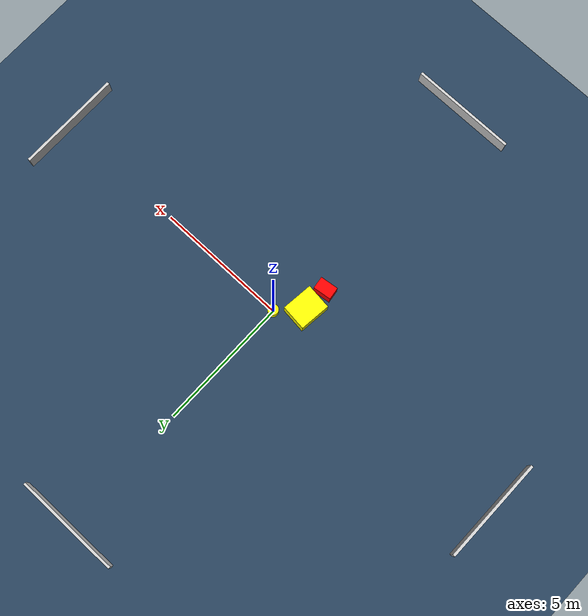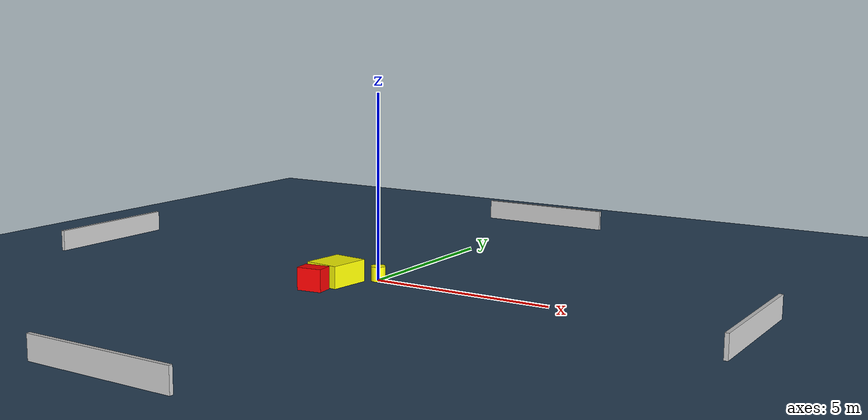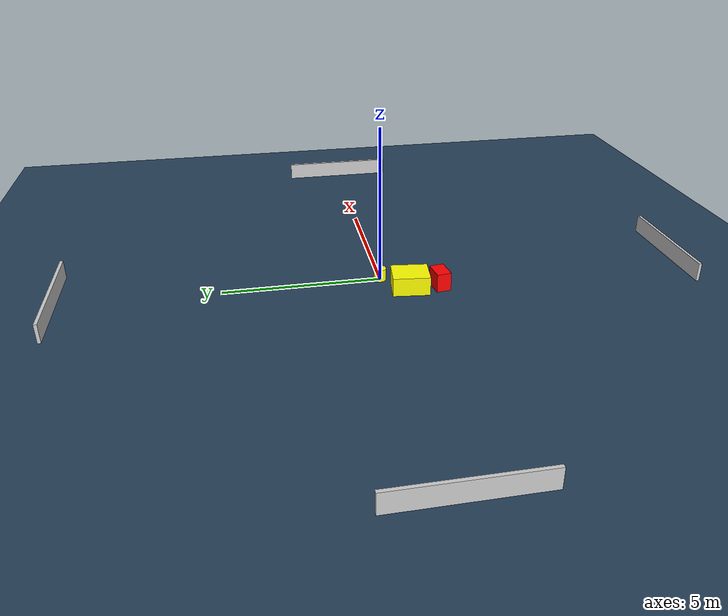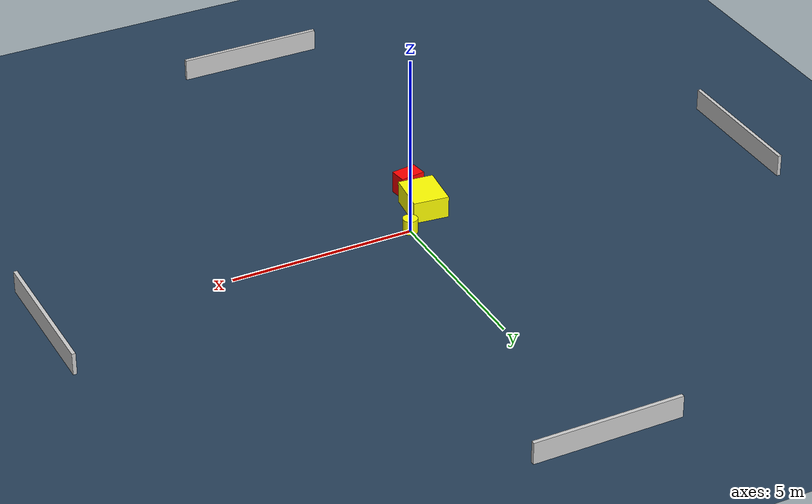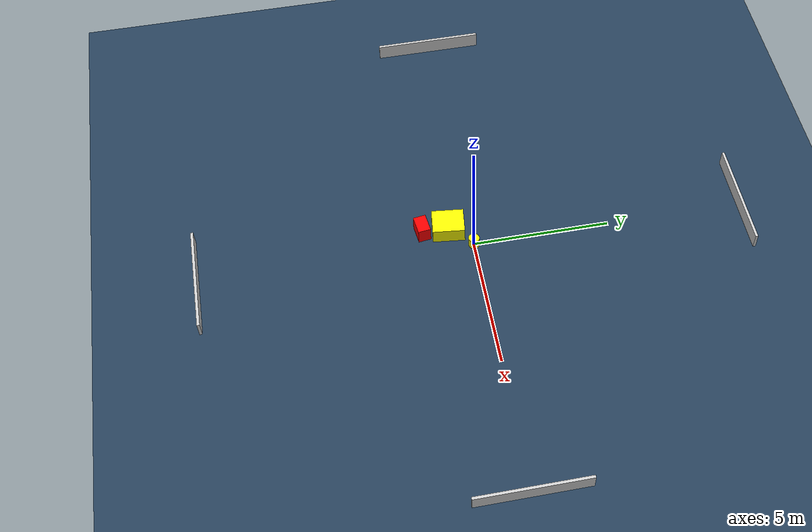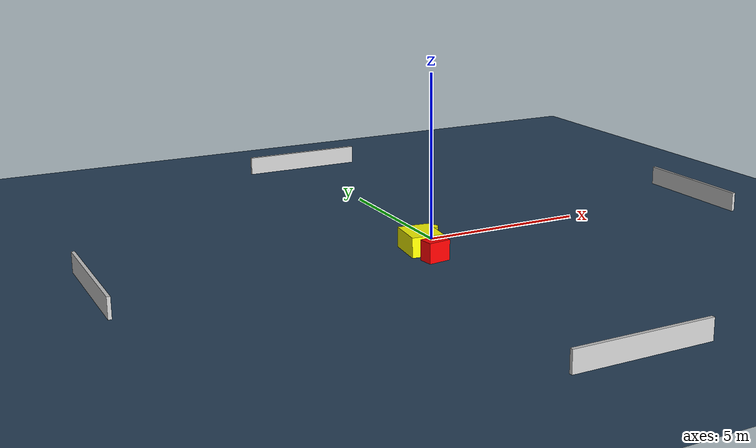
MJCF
<?xml version="1.0" ?>
<mujoco model="generated_environment">
  <option timestep="0.01" integrator="RK4" cone="elliptic"/>
  <default>
    <geom density="1"/>
  </default>
  <asset>
    <texture builtin="gradient" height="3072" name="skybox" rgb1="0.3 0.5 0.7" rgb2="0 0 0" type="skybox" width="512"/>
    <texture builtin="checker" height="300" name="groundplane" rgb1="0.2 0.3 0.4" rgb2="0.1 0.2 0.3" type="2d" width="300"/>
    <material name="groundplane" reflectance="0.2" texrepeat="5 5" texture="groundplane"/>
  </asset>
  <worldbody>
    <light dir="0 0 -1" directional="true" pos="0 0 1.5"/>
    <geom condim="3" friction="0.5 0.005 0.001" material="groundplane" name="floor" pos="0 0 0" size="0 0 0.05" type="plane"/>
    <body name="walls">
      <geom name="wall_1" condim="4" pos="-10.0 0.0 0.3" rgba="0.800000011920929 0.800000011920929 0.800000011920929 1.0" size="0.05 2.0 0.3" type="box"/>
      <geom name="wall_2" condim="4" pos="10.0 0.0 0.3" rgba="0.800000011920929 0.800000011920929 0.800000011920929 1.0" size="0.05 2.0 0.3" type="box"/>
      <geom name="wall_3" condim="4" pos="0.0 -10.0 0.3" rgba="0.800000011920929 0.800000011920929 0.800000011920929 1.0" size="2.0 0.05 0.3" type="box"/>
      <geom name="wall_4" condim="4" pos="0.0 10.0 0.3" rgba="0.800000011920929 0.800000011920929 0.800000011920929 1.0" size="2.0 0.05 0.3" type="box"/>
    </body>
    <body name="robot">
      <joint name="joint_x" type="slide" pos="0 0 0" axis="1 0 0"/>
      <joint name="joint_y" type="slide" pos="0 0 0" axis="0 1 0"/>
      <geom name="robot" type="cylinder" pos="0.0 0.0 0.2" size="0.2 0.2 0.0" mass="5.0" friction="1.0 0.005 0.0001" condim="4" rgba="1.0 1.0 0.0 1.0"/>
    </body>
    <body name="obstacle_1_movable">
      <geom name="obstacle_1_movable" condim="4" pos="-0.7978833362580133 -0.8125525402936019 0.3" euler="0 0 263.7710543306634" friction="0.0 0.005 0.001" rgba="1.0 1.0 0.0 1.0" size="0.5845588030701997 0.4813755834604581 0.3" type="box" mass="0.1"/>
      <joint type="free"/>
    </body>
    <body name="obstacle_2_static">
      <geom name="obstacle_2_static" condim="4" pos="-0.8395351484924968 -1.7678089062305218 0.3" euler="0 0 7.461117166323201" friction="0.0 0.005 0.001" rgba="1.0 0.0 0.0 1.0" size="0.34151105657484515 0.2323018720732266 0.3" type="box"/>
    </body>
  </worldbody>
  <actuator>
    <motor name="actuator_x" joint="joint_x" gear="1" ctrlrange="-1 1"/>
    <motor name="actuator_y" joint="joint_y" gear="1" ctrlrange="-1 1"/>
  </actuator>
</mujoco>
